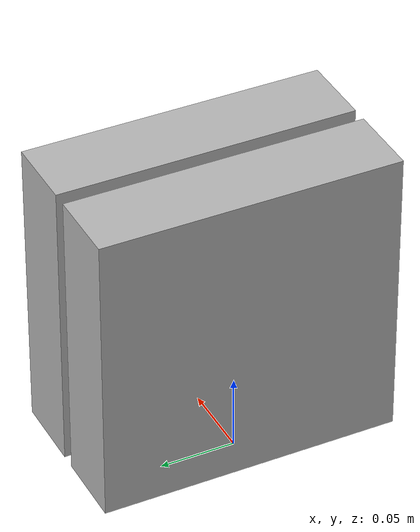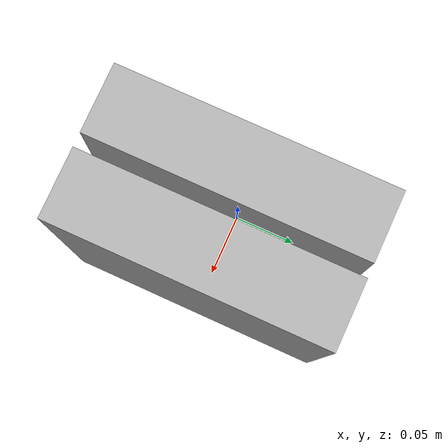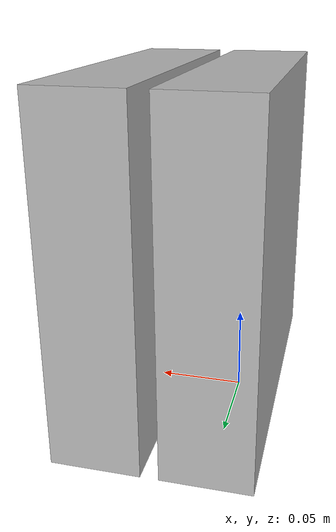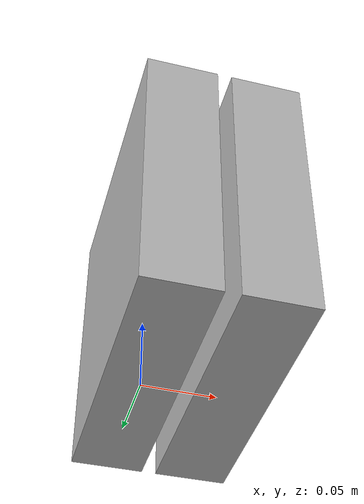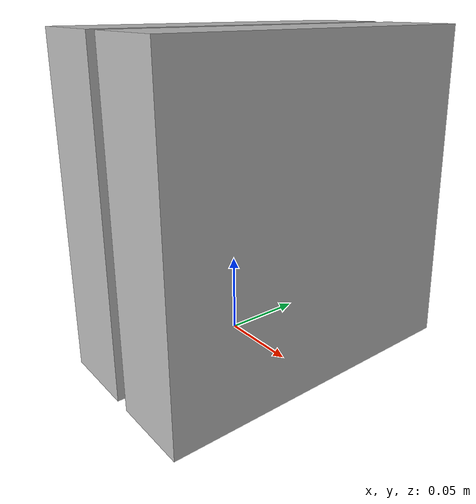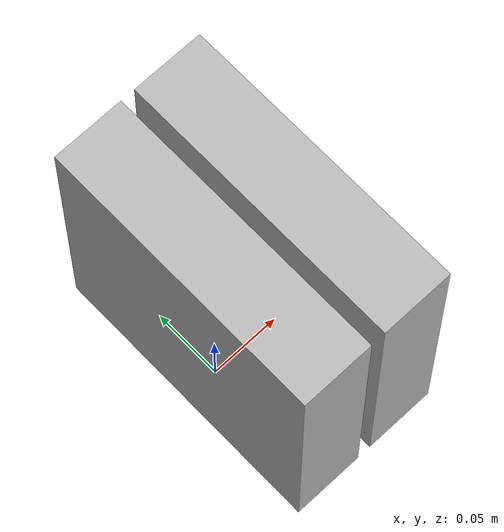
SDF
<?xml version="1.0"?>
<sdf version="1.4">
    <model name="simple_gripper">

        <static>false</static>

        <link name="fixed">
            <pose>0 0 .1 0 0 0</pose>
            <inertial>
                <pose>0 0 0 0 0 0</pose>
                <inertia>
                    <ixx>0.01</ixx>
                    <ixy>0</ixy>
                    <ixz>0</ixz>
                    <iyy>0.01</iyy>
                    <iyz>0</iyz>
                    <izz>0.01</izz>
                </inertia>
                <mass>0.5</mass>
            </inertial>
            <collision name="collision">
                <geometry>
                    <box>
                        <size>0.05 0.2 0.2</size>
                    </box>
                </geometry>
            </collision>
            <visual name="visual">
                <geometry>
                    <box>
                        <size>0.05 0.2 0.2</size>
                    </box>
                </geometry>
                <material>
                    <script>Gazebo/Purple</script>
                </material>
            </visual>
        </link>

        <link name="mover">
            <pose>0.06 0.0 .1 0 0 0</pose>
            <inertial>
                <inertia>
                    <ixx>0.01</ixx>
                    <ixy>0</ixy>
                    <ixz>0</ixz>
                    <iyy>0.01</iyy>
                    <iyz>0</iyz>
                    <izz>0.01</izz>
                </inertia>
                <mass>0.05</mass>
            </inertial>
            <collision name="collision">
                <geometry>
                    <box>
                        <size>0.05 0.2 0.2</size>
                    </box>
                </geometry>
            </collision>
            <visual name="visual">
                <geometry>
                    <box>
                        <size>0.05 0.2 0.2</size>
                    </box>
                </geometry>
                <material>
                    <script>Gazebo/Purple</script>
                </material>
            </visual>
        </link>

        <joint name="grip" type="prismatic">
            <child>mover</child>
            <parent>fixed</parent>
            <axis>
                <limit>
                    <lower>0</lower>
                    <upper>.6</upper>
                </limit>
                <xyz>1 0 0</xyz>
            </axis>
        </joint>
    </model>
</sdf>
